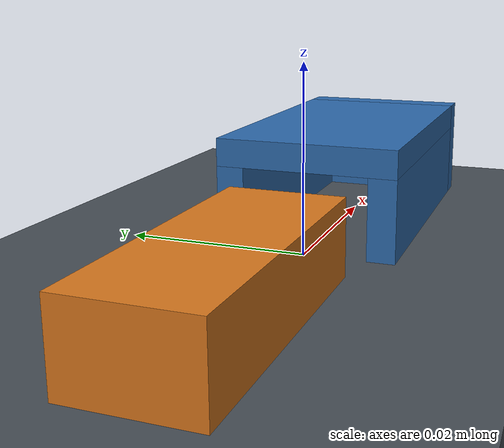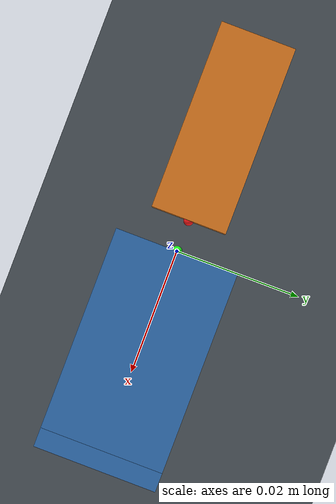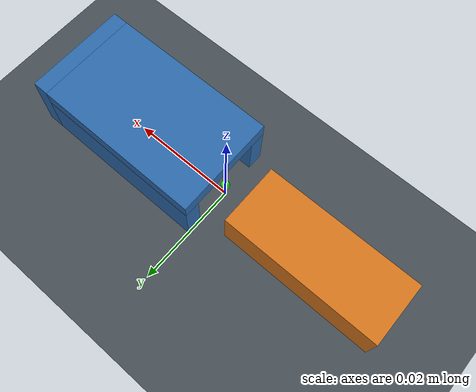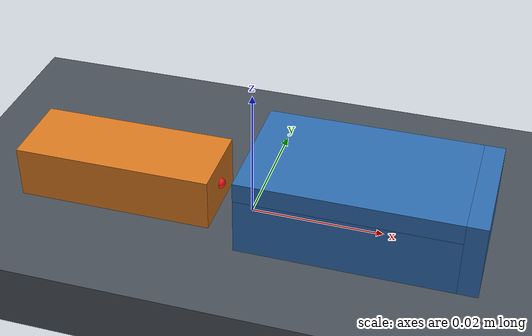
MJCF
<mujoco model="box connector insertion">
  <compiler angle="degree" coordinate="local"/>

  <option timestep="0.0005"
          integrator="implicitfast"
          solver="Newton"
          iterations="100"
          gravity="0 0 -9.81"/>

  <visual>
    <global azimuth="135" elevation="-20"/>
    <quality shadowsize="2048"/>
  </visual>

  <default>
    <geom condim="3"
          friction="0.4 0.005 0.0001"
          solref="0.002 1"
          solimp="0.9 0.95 0.001"/>
  </default>

  <asset>
    <material name="table_mat" rgba="0.28 0.31 0.34 1"/>
    <material name="plug_mat" rgba="0.85 0.47 0.12 1"/>
    <material name="socket_mat" rgba="0.18 0.42 0.68 1"/>
  </asset>

  <worldbody>
    <light name="key" pos="-0.15 -0.12 0.22" dir="0.5 0.3 -1"/>
    <camera name="overview" pos="-0.095 -0.105 0.080" xyaxes="0.74 -0.67 0 0.31 0.34 0.89"/>

    <!-- The table top is z=0.  It supports the free plug before insertion. -->
    <geom name="table" type="box" pos="0 0 -0.005"
          size="0.14 0.09 0.005" material="table_mat"/>

    <!--
      Opening: 13.5 mm wide (Y) by 9.5 mm high (Z), from x=0 to
      x=32 mm.  Each collision geom is convex; empty space is the cavity.
    -->
    <body name="socket" pos="0 0 0.004">
      <geom name="socket_top" type="box" pos="0.016 0 0.00625"
            size="0.016 0.00975 0.0015" material="socket_mat"/>
      <geom name="socket_bottom" type="box" pos="0.016 0 -0.00625"
            size="0.016 0.00975 0.0015" material="socket_mat"/>
      <geom name="socket_left" type="box" pos="0.016 0.00825 0"
            size="0.016 0.0015 0.00475" material="socket_mat"/>
      <geom name="socket_right" type="box" pos="0.016 -0.00825 0"
            size="0.016 0.0015 0.00475" material="socket_mat"/>
      <geom name="socket_back" type="box" pos="0.0335 0 0"
            size="0.0015 0.00975 0.00775" material="socket_mat"/>
      <site name="socket_entry" pos="0 0 0" size="0.0008"
            rgba="0.1 1 0.1 1"/>
      <site name="socket_target" pos="0.028 0 0" size="0.0008"
            rgba="0.1 1 0.1 0.35"/>
    </body>

    <!-- The front face begins 5 mm behind the socket entrance. -->
    <body name="plug" pos="-0.020 0 0.004">
      <freejoint name="plug_free"/>
      <geom name="plug_collision" type="box" size="0.015 0.006 0.004"
            mass="0.03" material="plug_mat"/>
      <site name="plug_tip" pos="0.015 0 0" size="0.0008"
            rgba="1 0.1 0.1 1"/>
    </body>
  </worldbody>
</mujoco>
